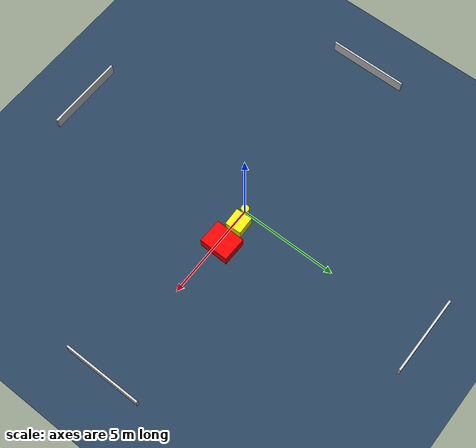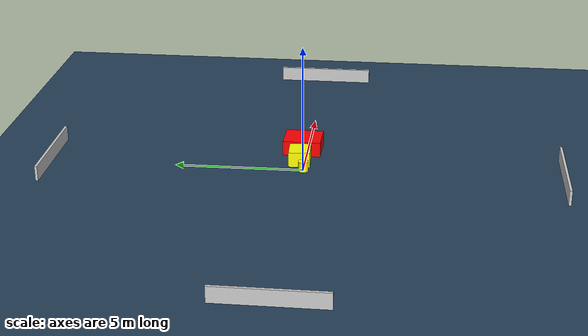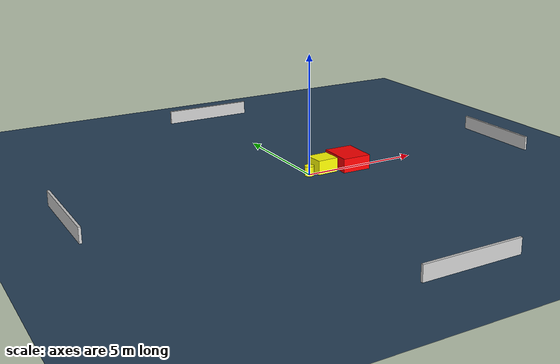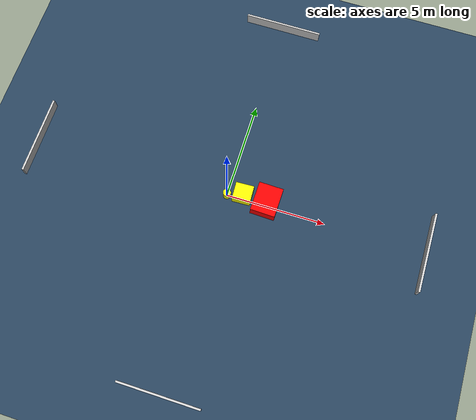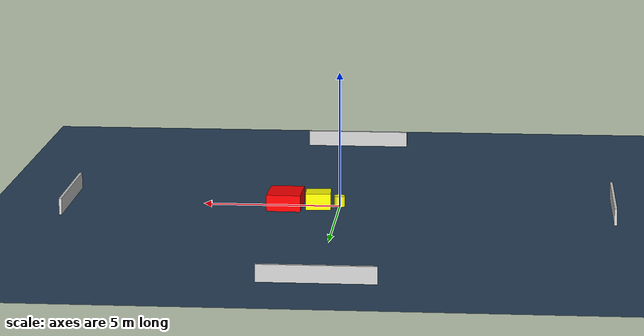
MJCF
<?xml version="1.0" ?>
<mujoco model="generated_environment">
  <option timestep="0.01" integrator="RK4" cone="elliptic"/>
  <default>
    <geom density="1"/>
  </default>
  <asset>
    <texture builtin="gradient" height="3072" name="skybox" rgb1="0.3 0.5 0.7" rgb2="0 0 0" type="skybox" width="512"/>
    <texture builtin="checker" height="300" name="groundplane" rgb1="0.2 0.3 0.4" rgb2="0.1 0.2 0.3" type="2d" width="300"/>
    <material name="groundplane" reflectance="0.2" texrepeat="5 5" texture="groundplane"/>
  </asset>
  <worldbody>
    <light dir="0 0 -1" directional="true" pos="0 0 1.5"/>
    <geom condim="3" friction="0.5 0.005 0.001" material="groundplane" name="floor" pos="0 0 0" size="0 0 0.05" type="plane"/>
    <body name="walls">
      <geom name="wall_1" condim="4" pos="-10.0 0.0 0.3" rgba="0.800000011920929 0.800000011920929 0.800000011920929 1.0" size="0.05 2.0 0.3" type="box"/>
      <geom name="wall_2" condim="4" pos="10.0 0.0 0.3" rgba="0.800000011920929 0.800000011920929 0.800000011920929 1.0" size="0.05 2.0 0.3" type="box"/>
      <geom name="wall_3" condim="4" pos="0.0 -10.0 0.3" rgba="0.800000011920929 0.800000011920929 0.800000011920929 1.0" size="2.0 0.05 0.3" type="box"/>
      <geom name="wall_4" condim="4" pos="0.0 10.0 0.3" rgba="0.800000011920929 0.800000011920929 0.800000011920929 1.0" size="2.0 0.05 0.3" type="box"/>
    </body>
    <body name="robot">
      <joint name="joint_x" type="slide" pos="0 0 0" axis="1 0 0"/>
      <joint name="joint_y" type="slide" pos="0 0 0" axis="0 1 0"/>
      <geom name="robot" type="cylinder" pos="0.0 0.0 0.2" size="0.2 0.2 0.0" mass="5.0" friction="1.0 0.005 0.0001" condim="4" rgba="1.0 1.0 0.0 1.0"/>
    </body>
    <body name="obstacle_1_movable">
      <geom name="obstacle_1_movable" condim="4" pos="0.7611615678995121 0.2110796974177742 0.3" euler="0 0 272.38800510576925" friction="0.0 0.005 0.001" rgba="1.0 1.0 0.0 1.0" size="0.41842329073119844 0.4584425652285835 0.3" type="box" mass="0.1"/>
      <joint type="free"/>
    </body>
    <body name="obstacle_2_static">
      <geom name="obstacle_2_static" condim="4" pos="1.9778621916946422 0.20023851488797614 0.3" euler="0 0 268.8155127377955" friction="0.0 0.005 0.001" rgba="1.0 0.0 0.0 1.0" size="0.7481199466126669 0.6160696024397607 0.3" type="box"/>
    </body>
  </worldbody>
  <actuator>
    <motor name="actuator_x" joint="joint_x" gear="1" ctrlrange="-1 1"/>
    <motor name="actuator_y" joint="joint_y" gear="1" ctrlrange="-1 1"/>
  </actuator>
</mujoco>
